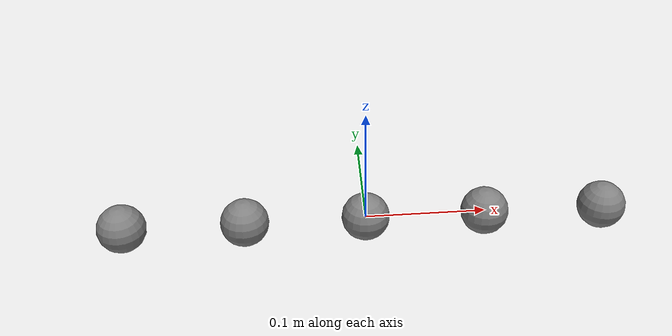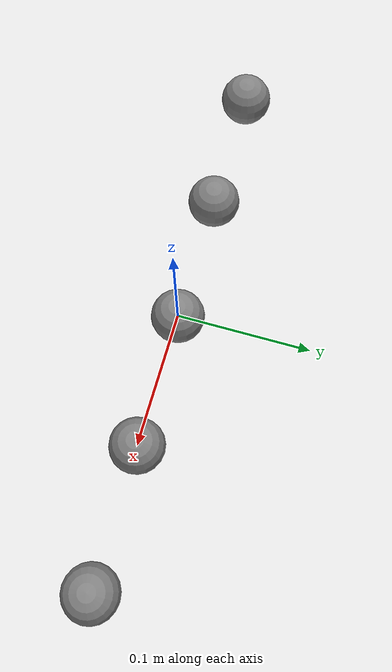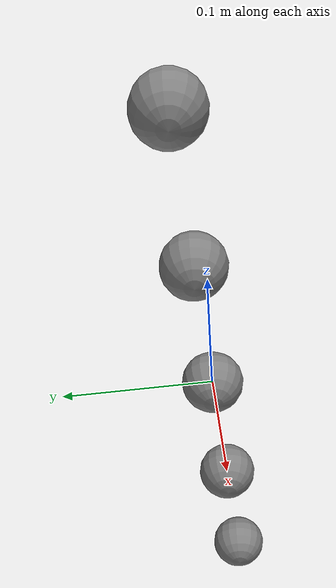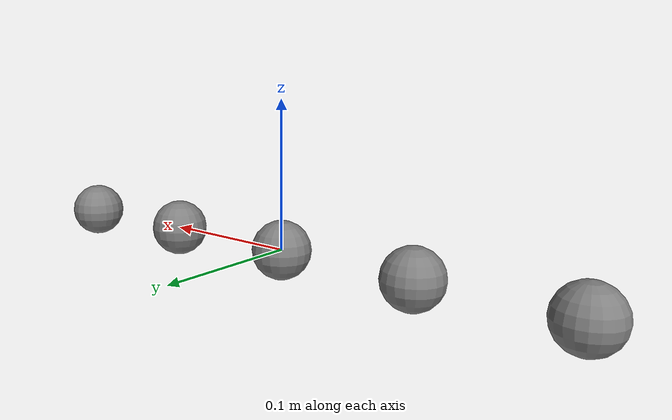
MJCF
<mujoco model="ten_provider_handles_fixture">
  <option timestep=".001" integrator="implicit"/>
  <worldbody>
    <body name="pad1" pos="-.2 0 0"><joint type="hinge"/><geom size=".02" mass=".1"/><site name="tip1"/></body>
    <body name="pad2" pos="-.1 0 0"><joint type="hinge"/><geom size=".02" mass=".1"/><site name="tip2"/></body>
    <body name="pad3"><joint type="hinge"/><geom size=".02" mass=".1"/><site name="tip3"/></body>
    <body name="pad4" pos=".1 0 0"><joint type="hinge"/><geom size=".02" mass=".1"/><site name="tip4"/></body>
    <body name="pad5" pos=".2 0 0"><joint type="hinge"/><geom size=".02" mass=".1"/><site name="tip5"/></body>
  </worldbody>
  <custom>
    <text name="orca.sensor.v1/touch_f1/plugin" data="com.orca.examples.contact_grid"/><tuple name="orca.sensor.v1/touch_f1/site"><element objtype="site" objname="tip1"/></tuple>
    <text name="orca.sensor.v1/range_f1/plugin" data="com.orca.examples.rangefinder"/><tuple name="orca.sensor.v1/range_f1/site"><element objtype="site" objname="tip1"/></tuple>
    <text name="orca.sensor.v1/touch_f2/plugin" data="com.orca.examples.contact_grid"/><tuple name="orca.sensor.v1/touch_f2/site"><element objtype="site" objname="tip2"/></tuple>
    <text name="orca.sensor.v1/range_f2/plugin" data="com.orca.examples.rangefinder"/><tuple name="orca.sensor.v1/range_f2/site"><element objtype="site" objname="tip2"/></tuple>
    <text name="orca.sensor.v1/touch_f3/plugin" data="com.orca.examples.contact_grid"/><tuple name="orca.sensor.v1/touch_f3/site"><element objtype="site" objname="tip3"/></tuple>
    <text name="orca.sensor.v1/range_f3/plugin" data="com.orca.examples.rangefinder"/><tuple name="orca.sensor.v1/range_f3/site"><element objtype="site" objname="tip3"/></tuple>
    <text name="orca.sensor.v1/touch_f4/plugin" data="com.orca.examples.contact_grid"/><tuple name="orca.sensor.v1/touch_f4/site"><element objtype="site" objname="tip4"/></tuple>
    <text name="orca.sensor.v1/range_f4/plugin" data="com.orca.examples.rangefinder"/><tuple name="orca.sensor.v1/range_f4/site"><element objtype="site" objname="tip4"/></tuple>
    <text name="orca.sensor.v1/touch_f5/plugin" data="com.orca.examples.contact_grid"/><tuple name="orca.sensor.v1/touch_f5/site"><element objtype="site" objname="tip5"/></tuple>
    <text name="orca.sensor.v1/range_f5/plugin" data="com.orca.examples.rangefinder"/><tuple name="orca.sensor.v1/range_f5/site"><element objtype="site" objname="tip5"/></tuple>
  </custom>
</mujoco>
